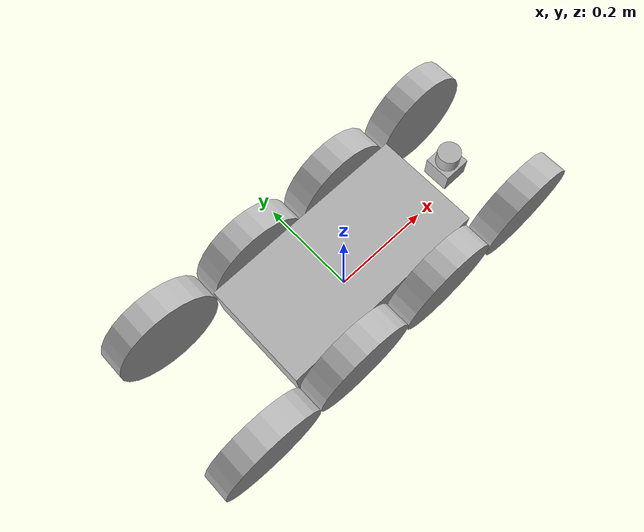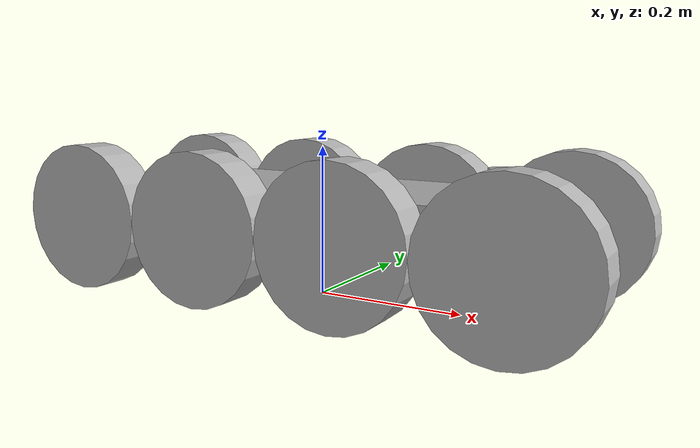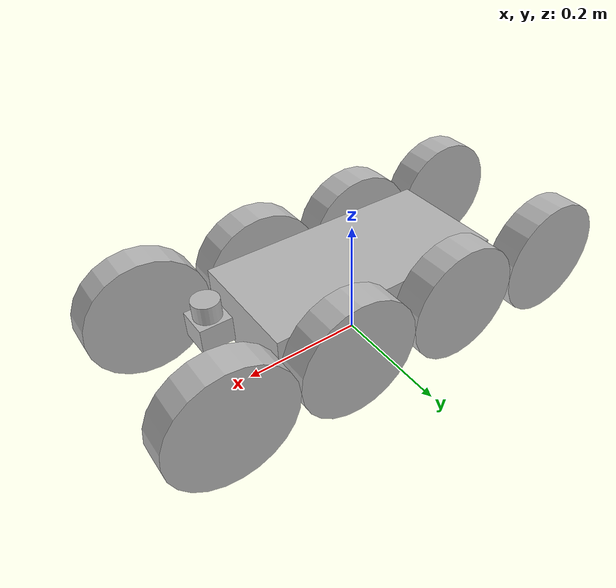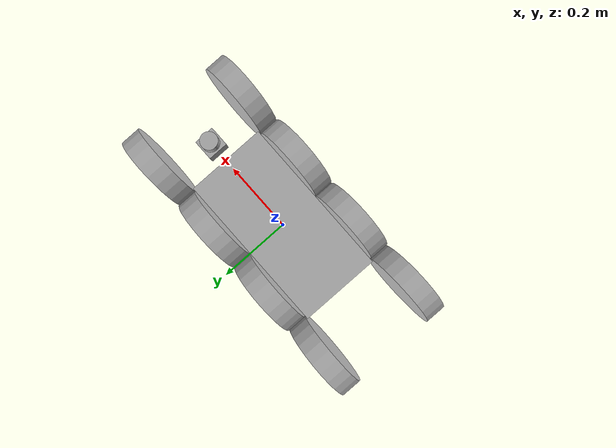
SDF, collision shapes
<?xml version='1.0'?>
<sdf version='1.4'>
  <model name="4Rover">
    <static>false</static>
      <link name='chassis'>
        <pose>0 0 .1 0 0 0</pose>

        <collision name='collision'>
          <geometry>
            <box>
              <size>.4 .2 .1</size>
            </box>
          </geometry>
        </collision>

        <visual name='visual'>
          <geometry>
            <box>
              <size>.8 .2 .1</size>
            </box>
          </geometry>
        </visual>
      </link>
      <link name="left_wheel_front">
        <pose>0.3 0.13 0.1 0 1.5707 1.5707</pose>
        <collision name="collision">
          <geometry>
            <cylinder>
              <radius>.1</radius>
              <length>.05</length>
            </cylinder>
          </geometry>
        </collision>
        <visual name="visual">
          <geometry>
            <cylinder>
              <radius>.08</radius>
              <length>.05</length>
            </cylinder>
          </geometry>
        </visual>
      </link>
      <link name="right_wheel_front">
        <pose>0.3 -0.13 0.1 0 1.5707 1.5707</pose>
        <collision name="collision">
          <geometry>
            <cylinder>
              <radius>.1</radius>
              <length>.05</length>
            </cylinder>
          </geometry>
        </collision>
        <visual name="visual">
          <geometry>
            <cylinder>
              <radius>.08</radius>
              <length>.05</length>
            </cylinder>
          </geometry>
        </visual>
      </link>

      <link name="left_wheel_middle1">
        <pose>0.1 0.13 0.1 0 1.5707 1.5707</pose>
        <collision name="collision">
          <geometry>
            <cylinder>
              <radius>.1</radius>
              <length>.05</length>
            </cylinder>
          </geometry>
        </collision>
        <visual name="visual">
          <geometry>
            <cylinder>
              <radius>.08</radius>
              <length>.05</length>
            </cylinder>
          </geometry>
        </visual>
      </link>
      <link name="right_wheel_middle1">
        <pose>0.1 -0.13 0.1 0 1.5707 1.5707</pose>
        <collision name="collision">
          <geometry>
            <cylinder>
              <radius>.1</radius>
              <length>.05</length>
            </cylinder>
          </geometry>
        </collision>
        <visual name="visual">
          <geometry>
            <cylinder>
              <radius>.08</radius>
              <length>.05</length>
            </cylinder>
          </geometry>
        </visual>
      </link>

      <link name="left_wheel_middle2">
        <pose>-0.1 0.13 0.1 0 1.5707 1.5707</pose>
        <collision name="collision">
          <geometry>
            <cylinder>
              <radius>.1</radius>
              <length>.05</length>
            </cylinder>
          </geometry>
        </collision>
        <visual name="visual">
          <geometry>
            <cylinder>
              <radius>.08</radius>
              <length>.05</length>
            </cylinder>
          </geometry>
        </visual>
      </link>
      <link name="right_wheel_middle2">
        <pose>-0.1 -0.13 0.1 0 1.5707 1.5707</pose>
        <collision name="collision">
          <geometry>
            <cylinder>
              <radius>.1</radius>
              <length>.05</length>
            </cylinder>
          </geometry>
        </collision>
        <visual name="visual">
          <geometry>
            <cylinder>
              <radius>.08</radius>
              <length>.05</length>
            </cylinder>
          </geometry>
        </visual>
      </link>

      <link name="left_wheel_back">
        <pose>-0.3 0.13 0.1 0 1.5707 1.5707</pose>
        <collision name="collision">
          <geometry>
            <cylinder>
              <radius>.1</radius>
              <length>.05</length>
            </cylinder>
          </geometry>
        </collision>
        <visual name="visual">
          <geometry>
            <cylinder>
              <radius>.08</radius>
              <length>.05</length>
            </cylinder>
          </geometry>
        </visual>
      </link>
      <link name="right_wheel_back">
        <pose>-0.3 -0.13 0.1 0 1.5707 1.5707</pose>
        <collision name="collision">
          <geometry>
            <cylinder>
              <radius>.1</radius>
              <length>.05</length>
            </cylinder>
          </geometry>
        </collision>
        <visual name="visual">
          <geometry>
            <cylinder>
              <radius>.08</radius>
              <length>.05</length>
            </cylinder>
          </geometry>
        </visual>
      </link>

       <!-- Add the laser range finder -->
       <link name="laser_link">
         <inertial>
           <!-- Mass of the laser range finder in kg -->
           <mass>0.001</mass>
         </inertial>
         <!-- Position is towards the front of the robot -->
         <!-- Laser finder is mounted on top -->
         <pose>0.25 0 0.15 0 0 0</pose>

         <!-- Add a mesh to make it more visually appealing -->
         <visual name="visual">
           <geometry>
             <mesh>
               <uri>model://hokuyo/meshes/hokuyo.dae</uri>
             </mesh>
           </geometry>
         </visual>

         <!-- Collision properties of the base of the laser range finder-->
         <collision name="collision-base">
           <pose>0 0 -0.0145 0 0 0</pose>
           <geometry>
             <box>
               <size>0.05 0.05 0.041</size>
             </box>
           </geometry>
         </collision>
         <!-- Collision properties of the top of the laser range finder-->
         <collision name="collision-top">
           <pose>0 0 0.0205 0 0 0</pose>
           <geometry>
             <cylinder>
               <radius>0.021</radius>
               <length>0.029</length>
             </cylinder>
           </geometry>
         </collision>

         <!-- Describes the type and properties of the sensor -->
	 <sensor name="laser" type="ray">
	   <pose>0.01 0 0.0175 0 -0 0</pose>
           <ray>
             <scan>
               <horizontal>
                 <samples>181</samples>
                 <resolution>1</resolution>
                 <min_angle>-1.57080</min_angle>
                 <max_angle>1.57080</max_angle>
               </horizontal>
             </scan>
             <range>
               <min>0.08</min>
               <max>10</max>
               <resolution>0.05</resolution>
             </range>
           </ray>
           <always_on>1</always_on>
           <update_rate>10</update_rate>
           <visualize>true</visualize>

           <plugin name='laser' filename='libgazebo_ros_ray_sensor.so'>
             <ros>
               <namespace>/demo</namespace>
               <argument>--ros-args --remap ~/out:=scan</argument>
             </ros>
             <output_type>sensor_msgs/LaserScan</output_type>
           </plugin>
	 </sensor>
       </link>

          <link name="camera_link">
  <pose>0.32 0 0.14 0 0 0</pose>

  <visual name="camera_visual">
    <pose>-0.005 0 0 0 0 0</pose>
    <geometry>
      <box>
        <size>0.015 0.08 0.022</size>
      </box>
    </geometry>
    <material>
      <ambient>0 0 0 1.0</ambient>
      <diffuse>0 0 0 1.0</diffuse>
      <specular>0.0 0.0 0.0 1.0</specular>
      <emissive>0.0 0.0 0.0 1.0</emissive>
    </material>
  </visual>

  <sensor name="depth_camera" type="camera">
    <always_on>true</always_on>
    <visualize>true</visualize>
    <update_rate>5</update_rate>
    <camera name="camera">
      <horizontal_fov>1.02974</horizontal_fov>
      <image>
        <width>640</width>
        <height>480</height>
        <format>R8G8B8</format>
      </image>
      <clip>
        <near>0.02</near>
        <far>10</far>
      </clip>
      <noise>
        <type>gaussian</type>
        <!-- Noise is sampled independently per pixel on each frame.
             That pixel's noise value is added to each of its color
              channels, which at that point lie in the range [0,1]. -->
        <mean>0.0</mean>
        <stddev>0.007</stddev>
      </noise>
    </camera>
      <plugin name="depth_camera_controller" filename="libgazebo_ros_camera.so">
      <camera_name>depth_camera</camera_name>
      <frame_name>camera_depth_frame</frame_name>
      <hack_baseline>0</hack_baseline>
      <min_depth>0.001</min_depth>
    </plugin>
  </sensor>
  </link>

      <joint type="fixed" name="camera_joint">
        <pose>0 0 0 0 0 0</pose>
        <child>camera_link</child>
        <parent>chassis</parent>
        <axis>
          <xyz>0 1 0</xyz>
        </axis>
      </joint>

      <joint type="revolute" name="left_wheel_hinge_front">
        <pose>0 0 -0.03 0 0 0</pose>
        <child>left_wheel_front</child>
        <parent>chassis</parent>
        <axis>
          <xyz>0 1 0</xyz>
          </axis>
      </joint>

      <joint type="revolute" name="right_wheel_hinge_front">
        <pose>0 0 0.03 0 0 0</pose>
        <child>right_wheel_front</child>
        <parent>chassis</parent>
        <axis>
          <xyz>0 1 0</xyz>
        </axis>
      </joint>

      <joint type="revolute" name="left_wheel_hinge_middle1">
        <pose>0 0 -0.03 0 0 0</pose>
        <child>left_wheel_middle1</child>
        <parent>chassis</parent>
        <axis>
          <xyz>0 1 0</xyz>
          </axis>
      </joint>

      <joint type="revolute" name="right_wheel_hinge_middle1">
        <pose>0 0 0.03 0 0 0</pose>
        <child>right_wheel_middle1</child>
        <parent>chassis</parent>
        <axis>
          <xyz>0 1 0</xyz>
        </axis>
      </joint>

      <joint type="revolute" name="left_wheel_hinge_middle2">
        <pose>0 0 -0.03 0 0 0</pose>
        <child>left_wheel_middle2</child>
        <parent>chassis</parent>
        <axis>
          <xyz>0 1 0</xyz>
          </axis>
      </joint>

      <joint type="revolute" name="right_wheel_hinge_middle2">
        <pose>0 0 0.03 0 0 0</pose>
        <child>right_wheel_middle2</child>
        <parent>chassis</parent>
        <axis>
          <xyz>0 1 0</xyz>
        </axis>
      </joint>

      <joint type="revolute" name="left_wheel_hinge_back">
        <pose>0 0 -0.03 0 0 0</pose>
        <child>left_wheel_back</child>
        <parent>chassis</parent>
        <axis>
          <xyz>0 1 0</xyz>
          </axis>
      </joint>

      <joint type="revolute" name="right_wheel_hinge_back">
        <pose>0 0 0.03 0 0 0</pose>
        <child>right_wheel_back</child>
        <parent>chassis</parent>
        <axis>
          <xyz>0 1 0</xyz>
        </axis>
      </joint>

       <!-- Connect laser range finder to the robot's body -->
       <joint type="fixed" name="laser_joint">
         <child>laser_link</child>
         <parent>chassis</parent>
       </joint>

       <!-- Controls the differential drive robot -->
       <plugin name='diff_drive' filename='libgazebo_ros_diff_drive.so'>
         <ros>
           <namespace>/demo</namespace>
           <remapping>cmd_vel:=cmd_vel</remapping>
           <remapping>odom:=odom</remapping>
         </ros>

         <!-- wheels -->
         <num_wheel_pairs>4</num_wheel_pairs>
         <left_joint>left_wheel_hinge_front</left_joint>
         <left_joint>left_wheel_hinge_middle1</left_joint>
         <left_joint>left_wheel_hinge_middle2</left_joint>
         <left_joint>left_wheel_hinge_back</left_joint>
         <right_joint>right_wheel_hinge_front</right_joint>
         <right_joint>right_wheel_hinge_middle1</right_joint>
         <right_joint>right_wheel_hinge_middle2</right_joint>
         <right_joint>right_wheel_hinge_back</right_joint>

         <!-- kinematics -->
         <wheel_separation>0.26</wheel_separation>
         <wheel_diameter>0.2</wheel_diameter>

         <!-- limits -->
         <max_wheel_torque>20</max_wheel_torque>
         <max_wheel_acceleration>1.0</max_wheel_acceleration>

         <!-- output -->
         <publish_odom>true</publish_odom>
         <publish_odom_tf>true</publish_odom_tf>
         <publish_wheel_tf>true</publish_wheel_tf>

         <odometry_frame>odom</odometry_frame>
         <robot_base_frame>chassis</robot_base_frame>
       </plugin>

  </model>
</sdf>
